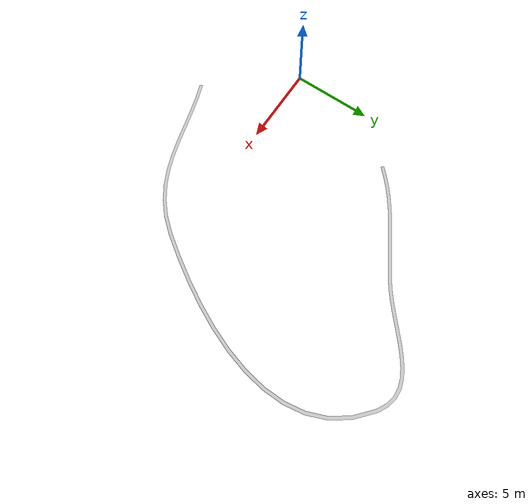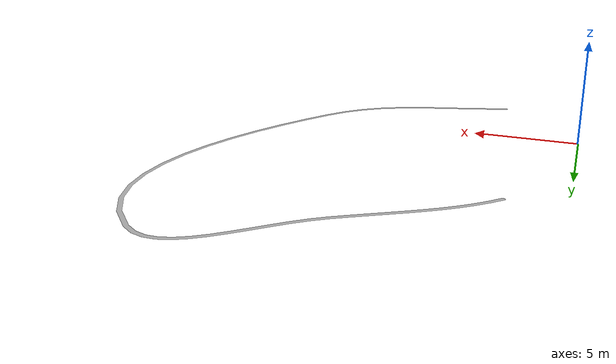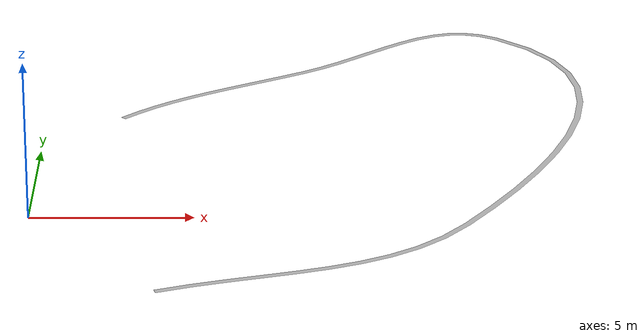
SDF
<?xml version="1.0"?>
<sdf version="1.5">
    <model name="road1_2">
        <static>true</static>
        <link name="link">
            <collision name="collision">
                <pose>0 0 0 0 0 0</pose>
                <geometry>
                    <mesh>
                        <uri>model://road1_2/meshes/road1_2.dae</uri>
                    </mesh>
                </geometry>
            </collision>
            <visual name="visual">
              <pose>0 0 0 0 0 0</pose>
              <geometry>
              <mesh>
                 <uri>model://road1_2/meshes/road1_2.dae</uri>
              </mesh>
              </geometry>
             </visual>
        </link>
    </model>
</sdf>
